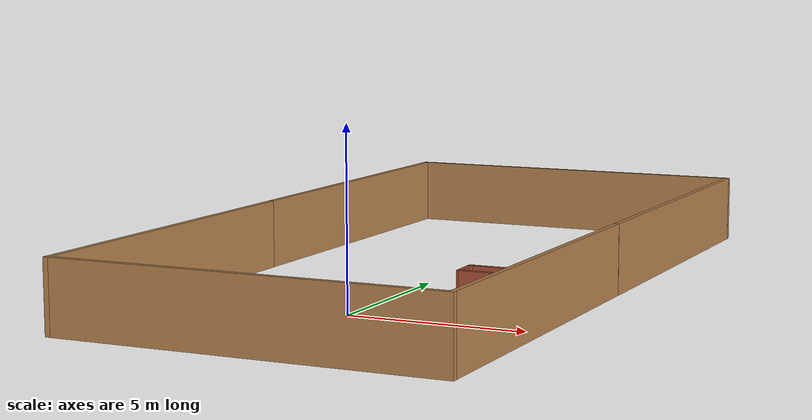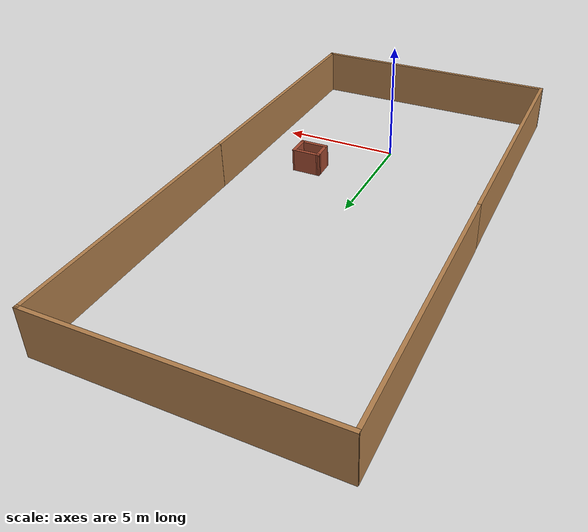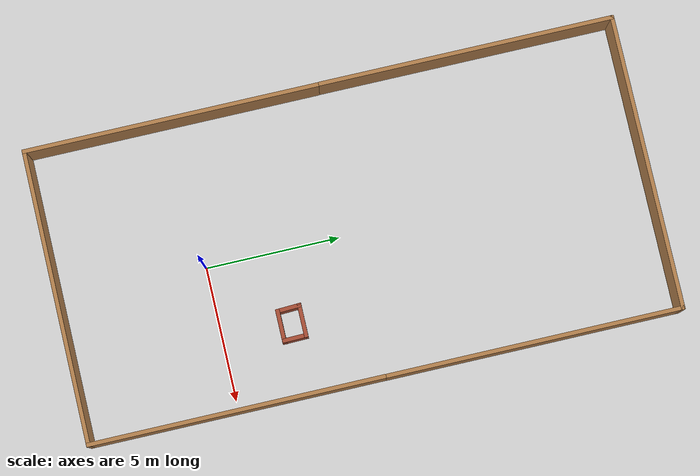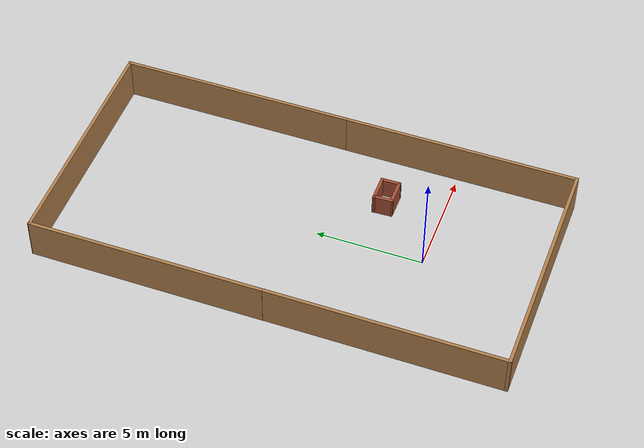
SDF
<?xml version='1.0'?>
<sdf version='1.7'>
  <model name='world_new'>
    <link name='Wall_15'>
      <pose>2.724 3.029 0 0 -0 0</pose>
      <self_collide>0</self_collide>
      <kinematic>0</kinematic>
      <gravity>1</gravity>
      <enable_wind>0</enable_wind>
      <visual name='Wall_15_Visual'>
        <pose>0 0 0.5 0 -0 0</pose>
        <geometry>
          <box>
            <size>1.2678 0.15 1</size>
          </box>
        </geometry>
        <material>
          <script>
            <uri>file://media/materials/scripts/gazebo.material</uri>
            <name>Gazebo/Bricks</name>
          </script>
          <ambient>1 1 1 1</ambient>
          <diffuse>1 1 1 1</diffuse>
          <specular>0.2 0.2 0.2 1</specular>
          <emissive>0 0 0 1</emissive>
          <shader type='pixel'/>
        </material>
        <meta>
          <layer>0</layer>
        </meta>
        <cast_shadows>1</cast_shadows>
        <transparency>0</transparency>
      </visual>
      <collision name='Wall_15_Collision'>
        <laser_retro>0</laser_retro>
        <max_contacts>10</max_contacts>
        <pose>0 0 0.5 0 -0 0</pose>
        <geometry>
          <box>
            <size>1.2678 0.15 1</size>
          </box>
        </geometry>
        <surface>
          <friction>
            <ode>
              <mu>1</mu>
              <mu2>1</mu2>
              <fdir1>0 0 0</fdir1>
              <slip1>0</slip1>
              <slip2>0</slip2>
            </ode>
            <torsional>
              <coefficient>1</coefficient>
              <patch_radius>0</patch_radius>
              <surface_radius>0</surface_radius>
              <use_patch_radius>1</use_patch_radius>
              <ode>
                <slip>0</slip>
              </ode>
            </torsional>
          </friction>
          <bounce>
            <restitution_coefficient>0</restitution_coefficient>
            <threshold>1e+06</threshold>
          </bounce>
          <contact>
            <collide_without_contact>0</collide_without_contact>
            <collide_without_contact_bitmask>1</collide_without_contact_bitmask>
            <collide_bitmask>1</collide_bitmask>
            <ode>
              <soft_cfm>0</soft_cfm>
              <soft_erp>0.2</soft_erp>
              <kp>1e+13</kp>
              <kd>1</kd>
              <max_vel>0.01</max_vel>
              <min_depth>0</min_depth>
            </ode>
            <bullet>
              <split_impulse>1</split_impulse>
              <split_impulse_penetration_threshold>-0.01</split_impulse_penetration_threshold>
              <soft_cfm>0</soft_cfm>
              <soft_erp>0.2</soft_erp>
              <kp>1e+13</kp>
              <kd>1</kd>
            </bullet>
          </contact>
        </surface>
      </collision>
    </link>
    <link name='Wall_16'>
      <pose>3.2915 2.6215 0 0 0 -1.54994</pose>
      <self_collide>0</self_collide>
      <kinematic>0</kinematic>
      <gravity>1</gravity>
      <enable_wind>0</enable_wind>
      <visual name='Wall_16_Visual'>
        <pose>0 0 0.5 0 -0 0</pose>
        <geometry>
          <box>
            <size>0.965005 0.15 1</size>
          </box>
        </geometry>
        <material>
          <script>
            <uri>file://media/materials/scripts/gazebo.material</uri>
            <name>Gazebo/Bricks</name>
          </script>
          <ambient>1 1 1 1</ambient>
          <diffuse>1 1 1 1</diffuse>
          <specular>0.2 0.2 0.2 1</specular>
          <emissive>0 0 0 1</emissive>
          <shader type='pixel'/>
        </material>
        <meta>
          <layer>0</layer>
        </meta>
        <cast_shadows>1</cast_shadows>
        <transparency>0</transparency>
      </visual>
      <collision name='Wall_16_Collision'>
        <laser_retro>0</laser_retro>
        <max_contacts>10</max_contacts>
        <pose>0 0 0.5 0 -0 0</pose>
        <geometry>
          <box>
            <size>0.965005 0.15 1</size>
          </box>
        </geometry>
        <surface>
          <friction>
            <ode>
              <mu>1</mu>
              <mu2>1</mu2>
              <fdir1>0 0 0</fdir1>
              <slip1>0</slip1>
              <slip2>0</slip2>
            </ode>
            <torsional>
              <coefficient>1</coefficient>
              <patch_radius>0</patch_radius>
              <surface_radius>0</surface_radius>
              <use_patch_radius>1</use_patch_radius>
              <ode>
                <slip>0</slip>
              </ode>
            </torsional>
          </friction>
          <bounce>
            <restitution_coefficient>0</restitution_coefficient>
            <threshold>1e+06</threshold>
          </bounce>
          <contact>
            <collide_without_contact>0</collide_without_contact>
            <collide_without_contact_bitmask>1</collide_without_contact_bitmask>
            <collide_bitmask>1</collide_bitmask>
            <ode>
              <soft_cfm>0</soft_cfm>
              <soft_erp>0.2</soft_erp>
              <kp>1e+13</kp>
              <kd>1</kd>
              <max_vel>0.01</max_vel>
              <min_depth>0</min_depth>
            </ode>
            <bullet>
              <split_impulse>1</split_impulse>
              <split_impulse_penetration_threshold>-0.01</split_impulse_penetration_threshold>
              <soft_cfm>0</soft_cfm>
              <soft_erp>0.2</soft_erp>
              <kp>1e+13</kp>
              <kd>1</kd>
            </bullet>
          </contact>
        </surface>
      </collision>
    </link>
    <link name='Wall_17'>
      <pose>2.75 2.214 0 0 -0 3.14159</pose>
      <self_collide>0</self_collide>
      <kinematic>0</kinematic>
      <gravity>1</gravity>
      <enable_wind>0</enable_wind>
      <visual name='Wall_17_Visual'>
        <pose>0 0 0.5 0 -0 0</pose>
        <geometry>
          <box>
            <size>1.25 0.15 1</size>
          </box>
        </geometry>
        <material>
          <script>
            <uri>file://media/materials/scripts/gazebo.material</uri>
            <name>Gazebo/Bricks</name>
          </script>
          <ambient>1 1 1 1</ambient>
          <diffuse>1 1 1 1</diffuse>
          <specular>0.2 0.2 0.2 1</specular>
          <emissive>0 0 0 1</emissive>
          <shader type='pixel'/>
        </material>
        <meta>
          <layer>0</layer>
        </meta>
        <cast_shadows>1</cast_shadows>
        <transparency>0</transparency>
      </visual>
      <collision name='Wall_17_Collision'>
        <laser_retro>0</laser_retro>
        <max_contacts>10</max_contacts>
        <pose>0 0 0.5 0 -0 0</pose>
        <geometry>
          <box>
            <size>1.25 0.15 1</size>
          </box>
        </geometry>
        <surface>
          <friction>
            <ode>
              <mu>1</mu>
              <mu2>1</mu2>
              <fdir1>0 0 0</fdir1>
              <slip1>0</slip1>
              <slip2>0</slip2>
            </ode>
            <torsional>
              <coefficient>1</coefficient>
              <patch_radius>0</patch_radius>
              <surface_radius>0</surface_radius>
              <use_patch_radius>1</use_patch_radius>
              <ode>
                <slip>0</slip>
              </ode>
            </torsional>
          </friction>
          <bounce>
            <restitution_coefficient>0</restitution_coefficient>
            <threshold>1e+06</threshold>
          </bounce>
          <contact>
            <collide_without_contact>0</collide_without_contact>
            <collide_without_contact_bitmask>1</collide_without_contact_bitmask>
            <collide_bitmask>1</collide_bitmask>
            <ode>
              <soft_cfm>0</soft_cfm>
              <soft_erp>0.2</soft_erp>
              <kp>1e+13</kp>
              <kd>1</kd>
              <max_vel>0.01</max_vel>
              <min_depth>0</min_depth>
            </ode>
            <bullet>
              <split_impulse>1</split_impulse>
              <split_impulse_penetration_threshold>-0.01</split_impulse_penetration_threshold>
              <soft_cfm>0</soft_cfm>
              <soft_erp>0.2</soft_erp>
              <kp>1e+13</kp>
              <kd>1</kd>
            </bullet>
          </contact>
        </surface>
      </collision>
    </link>
    <link name='Wall_18'>
      <pose>2.1825 2.6215 0 0 -0 1.61372</pose>
      <self_collide>0</self_collide>
      <kinematic>0</kinematic>
      <gravity>1</gravity>
      <enable_wind>0</enable_wind>
      <visual name='Wall_18_Visual'>
        <pose>0 0 0.5 0 -0 0</pose>
        <geometry>
          <box>
            <size>0.965005 0.15 1</size>
          </box>
        </geometry>
        <material>
          <script>
            <uri>file://media/materials/scripts/gazebo.material</uri>
            <name>Gazebo/Bricks</name>
          </script>
          <ambient>1 1 1 1</ambient>
          <diffuse>1 1 1 1</diffuse>
          <specular>0.2 0.2 0.2 1</specular>
          <emissive>0 0 0 1</emissive>
          <shader type='pixel'/>
        </material>
        <meta>
          <layer>0</layer>
        </meta>
        <cast_shadows>1</cast_shadows>
        <transparency>0</transparency>
      </visual>
      <collision name='Wall_18_Collision'>
        <laser_retro>0</laser_retro>
        <max_contacts>10</max_contacts>
        <pose>0 0 0.5 0 -0 0</pose>
        <geometry>
          <box>
            <size>0.965005 0.15 1</size>
          </box>
        </geometry>
        <surface>
          <friction>
            <ode>
              <mu>1</mu>
              <mu2>1</mu2>
              <fdir1>0 0 0</fdir1>
              <slip1>0</slip1>
              <slip2>0</slip2>
            </ode>
            <torsional>
              <coefficient>1</coefficient>
              <patch_radius>0</patch_radius>
              <surface_radius>0</surface_radius>
              <use_patch_radius>1</use_patch_radius>
              <ode>
                <slip>0</slip>
              </ode>
            </torsional>
          </friction>
          <bounce>
            <restitution_coefficient>0</restitution_coefficient>
            <threshold>1e+06</threshold>
          </bounce>
          <contact>
            <collide_without_contact>0</collide_without_contact>
            <collide_without_contact_bitmask>1</collide_without_contact_bitmask>
            <collide_bitmask>1</collide_bitmask>
            <ode>
              <soft_cfm>0</soft_cfm>
              <soft_erp>0.2</soft_erp>
              <kp>1e+13</kp>
              <kd>1</kd>
              <max_vel>0.01</max_vel>
              <min_depth>0</min_depth>
            </ode>
            <bullet>
              <split_impulse>1</split_impulse>
              <split_impulse_penetration_threshold>-0.01</split_impulse_penetration_threshold>
              <soft_cfm>0</soft_cfm>
              <soft_erp>0.2</soft_erp>
              <kp>1e+13</kp>
              <kd>1</kd>
            </bullet>
          </contact>
        </surface>
      </collision>
    </link>
    <link name='Wall_7'>
      <pose>5.425 0 0 0 0 -1.5708</pose>
      <self_collide>0</self_collide>
      <kinematic>0</kinematic>
      <gravity>1</gravity>
      <enable_wind>0</enable_wind>
      <visual name='Wall_7_Visual'>
        <pose>0 0 1 0 -0 0</pose>
        <geometry>
          <box>
            <size>11 0.15 2</size>
          </box>
        </geometry>
        <material>
          <script>
            <uri>file://media/materials/scripts/gazebo.material</uri>
            <name>Gazebo/Wood</name>
          </script>
          <ambient>1 1 1 1</ambient>
          <diffuse>1 1 1 1</diffuse>
          <specular>0.2 0.2 0.2 1</specular>
          <emissive>0 0 0 1</emissive>
          <shader type='pixel'/>
        </material>
        <meta>
          <layer>0</layer>
        </meta>
        <cast_shadows>1</cast_shadows>
        <transparency>0</transparency>
      </visual>
      <collision name='Wall_7_Collision'>
        <laser_retro>0</laser_retro>
        <max_contacts>10</max_contacts>
        <pose>0 0 1 0 -0 0</pose>
        <geometry>
          <box>
            <size>11 0.15 2</size>
          </box>
        </geometry>
        <surface>
          <friction>
            <ode>
              <mu>1</mu>
              <mu2>1</mu2>
              <fdir1>0 0 0</fdir1>
              <slip1>0</slip1>
              <slip2>0</slip2>
            </ode>
            <torsional>
              <coefficient>1</coefficient>
              <patch_radius>0</patch_radius>
              <surface_radius>0</surface_radius>
              <use_patch_radius>1</use_patch_radius>
              <ode>
                <slip>0</slip>
              </ode>
            </torsional>
          </friction>
          <bounce>
            <restitution_coefficient>0</restitution_coefficient>
            <threshold>1e+06</threshold>
          </bounce>
          <contact>
            <collide_without_contact>0</collide_without_contact>
            <collide_without_contact_bitmask>1</collide_without_contact_bitmask>
            <collide_bitmask>1</collide_bitmask>
            <ode>
              <soft_cfm>0</soft_cfm>
              <soft_erp>0.2</soft_erp>
              <kp>1e+13</kp>
              <kd>1</kd>
              <max_vel>0.01</max_vel>
              <min_depth>0</min_depth>
            </ode>
            <bullet>
              <split_impulse>1</split_impulse>
              <split_impulse_penetration_threshold>-0.01</split_impulse_penetration_threshold>
              <soft_cfm>0</soft_cfm>
              <soft_erp>0.2</soft_erp>
              <kp>1e+13</kp>
              <kd>1</kd>
            </bullet>
          </contact>
        </surface>
      </collision>
    </link>
    <link name='Wall_8'>
      <pose>0 -5.425 0 0 -0 3.14159</pose>
      <self_collide>0</self_collide>
      <kinematic>0</kinematic>
      <gravity>1</gravity>
      <enable_wind>0</enable_wind>
      <visual name='Wall_8_Visual'>
        <pose>0 0 1 0 -0 0</pose>
        <geometry>
          <box>
            <size>11 0.15 2</size>
          </box>
        </geometry>
        <material>
          <script>
            <uri>file://media/materials/scripts/gazebo.material</uri>
            <name>Gazebo/Wood</name>
          </script>
          <ambient>1 1 1 1</ambient>
          <diffuse>1 1 1 1</diffuse>
          <specular>0.2 0.2 0.2 1</specular>
          <emissive>0 0 0 1</emissive>
          <shader type='pixel'/>
        </material>
        <meta>
          <layer>0</layer>
        </meta>
        <cast_shadows>1</cast_shadows>
        <transparency>0</transparency>
      </visual>
      <collision name='Wall_8_Collision'>
        <laser_retro>0</laser_retro>
        <max_contacts>10</max_contacts>
        <pose>0 0 1 0 -0 0</pose>
        <geometry>
          <box>
            <size>11 0.15 2</size>
          </box>
        </geometry>
        <surface>
          <friction>
            <ode>
              <mu>1</mu>
              <mu2>1</mu2>
              <fdir1>0 0 0</fdir1>
              <slip1>0</slip1>
              <slip2>0</slip2>
            </ode>
            <torsional>
              <coefficient>1</coefficient>
              <patch_radius>0</patch_radius>
              <surface_radius>0</surface_radius>
              <use_patch_radius>1</use_patch_radius>
              <ode>
                <slip>0</slip>
              </ode>
            </torsional>
          </friction>
          <bounce>
            <restitution_coefficient>0</restitution_coefficient>
            <threshold>1e+06</threshold>
          </bounce>
          <contact>
            <collide_without_contact>0</collide_without_contact>
            <collide_without_contact_bitmask>1</collide_without_contact_bitmask>
            <collide_bitmask>1</collide_bitmask>
            <ode>
              <soft_cfm>0</soft_cfm>
              <soft_erp>0.2</soft_erp>
              <kp>1e+13</kp>
              <kd>1</kd>
              <max_vel>0.01</max_vel>
              <min_depth>0</min_depth>
            </ode>
            <bullet>
              <split_impulse>1</split_impulse>
              <split_impulse_penetration_threshold>-0.01</split_impulse_penetration_threshold>
              <soft_cfm>0</soft_cfm>
              <soft_erp>0.2</soft_erp>
              <kp>1e+13</kp>
              <kd>1</kd>
            </bullet>
          </contact>
        </surface>
      </collision>
    </link>
    <link name='Wall_8_clone'>
      <pose>0.005212 16.4497 0 0 -0 3.14159</pose>
      <self_collide>0</self_collide>
      <kinematic>0</kinematic>
      <gravity>1</gravity>
      <enable_wind>0</enable_wind>
      <visual name='Wall_8_Visual'>
        <pose>0 0 1 0 -0 0</pose>
        <geometry>
          <box>
            <size>11 0.15 2</size>
          </box>
        </geometry>
        <material>
          <script>
            <uri>file://media/materials/scripts/gazebo.material</uri>
            <name>Gazebo/Wood</name>
          </script>
          <ambient>1 1 1 1</ambient>
          <diffuse>1 1 1 1</diffuse>
          <specular>0.2 0.2 0.2 1</specular>
          <emissive>0 0 0 1</emissive>
          <shader type='pixel'/>
        </material>
        <meta>
          <layer>0</layer>
        </meta>
        <cast_shadows>1</cast_shadows>
        <transparency>0</transparency>
      </visual>
      <collision name='Wall_8_Collision'>
        <laser_retro>0</laser_retro>
        <max_contacts>10</max_contacts>
        <pose>0 0 1 0 -0 0</pose>
        <geometry>
          <box>
            <size>11 0.15 2</size>
          </box>
        </geometry>
        <surface>
          <friction>
            <ode>
              <mu>1</mu>
              <mu2>1</mu2>
              <fdir1>0 0 0</fdir1>
              <slip1>0</slip1>
              <slip2>0</slip2>
            </ode>
            <torsional>
              <coefficient>1</coefficient>
              <patch_radius>0</patch_radius>
              <surface_radius>0</surface_radius>
              <use_patch_radius>1</use_patch_radius>
              <ode>
                <slip>0</slip>
              </ode>
            </torsional>
          </friction>
          <bounce>
            <restitution_coefficient>0</restitution_coefficient>
            <threshold>1e+06</threshold>
          </bounce>
          <contact>
            <collide_without_contact>0</collide_without_contact>
            <collide_without_contact_bitmask>1</collide_without_contact_bitmask>
            <collide_bitmask>1</collide_bitmask>
            <ode>
              <soft_cfm>0</soft_cfm>
              <soft_erp>0.2</soft_erp>
              <kp>1e+13</kp>
              <kd>1</kd>
              <max_vel>0.01</max_vel>
              <min_depth>0</min_depth>
            </ode>
            <bullet>
              <split_impulse>1</split_impulse>
              <split_impulse_penetration_threshold>-0.01</split_impulse_penetration_threshold>
              <soft_cfm>0</soft_cfm>
              <soft_erp>0.2</soft_erp>
              <kp>1e+13</kp>
              <kd>1</kd>
            </bullet>
          </contact>
        </surface>
      </collision>
    </link>
    <link name='Wall_9'>
      <pose>-5.425 0 0 0 -0 1.5708</pose>
      <self_collide>0</self_collide>
      <kinematic>0</kinematic>
      <gravity>1</gravity>
      <enable_wind>0</enable_wind>
      <visual name='Wall_9_Visual'>
        <pose>0 0 1 0 -0 0</pose>
        <geometry>
          <box>
            <size>11 0.15 2</size>
          </box>
        </geometry>
        <material>
          <script>
            <uri>file://media/materials/scripts/gazebo.material</uri>
            <name>Gazebo/Wood</name>
          </script>
          <ambient>1 1 1 1</ambient>
          <diffuse>1 1 1 1</diffuse>
          <specular>0.2 0.2 0.2 1</specular>
          <emissive>0 0 0 1</emissive>
          <shader type='pixel'/>
        </material>
        <meta>
          <layer>0</layer>
        </meta>
        <cast_shadows>1</cast_shadows>
        <transparency>0</transparency>
      </visual>
      <collision name='Wall_9_Collision'>
        <laser_retro>0</laser_retro>
        <max_contacts>10</max_contacts>
        <pose>0 0 1 0 -0 0</pose>
        <geometry>
          <box>
            <size>11 0.15 2</size>
          </box>
        </geometry>
        <surface>
          <friction>
            <ode>
              <mu>1</mu>
              <mu2>1</mu2>
              <fdir1>0 0 0</fdir1>
              <slip1>0</slip1>
              <slip2>0</slip2>
            </ode>
            <torsional>
              <coefficient>1</coefficient>
              <patch_radius>0</patch_radius>
              <surface_radius>0</surface_radius>
              <use_patch_radius>1</use_patch_radius>
              <ode>
                <slip>0</slip>
              </ode>
            </torsional>
          </friction>
          <bounce>
            <restitution_coefficient>0</restitution_coefficient>
            <threshold>1e+06</threshold>
          </bounce>
          <contact>
            <collide_without_contact>0</collide_without_contact>
            <collide_without_contact_bitmask>1</collide_without_contact_bitmask>
            <collide_bitmask>1</collide_bitmask>
            <ode>
              <soft_cfm>0</soft_cfm>
              <soft_erp>0.2</soft_erp>
              <kp>1e+13</kp>
              <kd>1</kd>
              <max_vel>0.01</max_vel>
              <min_depth>0</min_depth>
            </ode>
            <bullet>
              <split_impulse>1</split_impulse>
              <split_impulse_penetration_threshold>-0.01</split_impulse_penetration_threshold>
              <soft_cfm>0</soft_cfm>
              <soft_erp>0.2</soft_erp>
              <kp>1e+13</kp>
              <kd>1</kd>
            </bullet>
          </contact>
        </surface>
      </collision>
    </link>
    <link name='Wall_9_clone'>
      <pose>-5.43187 10.9934 0 0 -0 1.5708</pose>
      <self_collide>0</self_collide>
      <kinematic>0</kinematic>
      <gravity>1</gravity>
      <enable_wind>0</enable_wind>
      <inertial>
        <mass>1</mass>
        <pose>0 0 0 0 -0 0</pose>
        <inertia>
          <ixx>1</ixx>
          <ixy>0</ixy>
          <ixz>0</ixz>
          <iyy>1</iyy>
          <iyz>0</iyz>
          <izz>1</izz>
        </inertia>
      </inertial>
      <visual name='Wall_9_Visual'>
        <pose>0 0 1 0 -0 0</pose>
        <geometry>
          <box>
            <size>11 0.15 2</size>
          </box>
        </geometry>
        <material>
          <script>
            <uri>file://media/materials/scripts/gazebo.material</uri>
            <name>Gazebo/Wood</name>
          </script>
          <ambient>1 1 1 1</ambient>
          <diffuse>1 1 1 1</diffuse>
          <specular>0.2 0.2 0.2 1</specular>
          <emissive>0 0 0 1</emissive>
          <shader type='pixel'>
            <normal_map>__default__</normal_map>
          </shader>
        </material>
        <meta>
          <layer>0</layer>
        </meta>
        <cast_shadows>1</cast_shadows>
        <transparency>0</transparency>
      </visual>
      <collision name='Wall_9_Collision'>
        <laser_retro>0</laser_retro>
        <max_contacts>10</max_contacts>
        <pose>0 0 1 0 -0 0</pose>
        <geometry>
          <box>
            <size>11 0.15 2</size>
          </box>
        </geometry>
        <surface>
          <friction>
            <ode>
              <mu>1</mu>
              <mu2>1</mu2>
              <fdir1>0 0 0</fdir1>
              <slip1>0</slip1>
              <slip2>0</slip2>
            </ode>
            <torsional>
              <coefficient>1</coefficient>
              <patch_radius>0</patch_radius>
              <surface_radius>0</surface_radius>
              <use_patch_radius>1</use_patch_radius>
              <ode>
                <slip>0</slip>
              </ode>
            </torsional>
          </friction>
          <bounce>
            <restitution_coefficient>0</restitution_coefficient>
            <threshold>1e+06</threshold>
          </bounce>
          <contact>
            <collide_without_contact>0</collide_without_contact>
            <collide_without_contact_bitmask>1</collide_without_contact_bitmask>
            <collide_bitmask>1</collide_bitmask>
            <ode>
              <soft_cfm>0</soft_cfm>
              <soft_erp>0.2</soft_erp>
              <kp>1e+13</kp>
              <kd>1</kd>
              <max_vel>0.01</max_vel>
              <min_depth>0</min_depth>
            </ode>
            <bullet>
              <split_impulse>1</split_impulse>
              <split_impulse_penetration_threshold>-0.01</split_impulse_penetration_threshold>
              <soft_cfm>0</soft_cfm>
              <soft_erp>0.2</soft_erp>
              <kp>1e+13</kp>
              <kd>1</kd>
            </bullet>
          </contact>
        </surface>
      </collision>
    </link>
    <link name='Wall_9_clone_0'>
      <pose>5.42819 10.9922 0 0 -0 1.5708</pose>
      <self_collide>0</self_collide>
      <kinematic>0</kinematic>
      <gravity>1</gravity>
      <enable_wind>0</enable_wind>
      <visual name='Wall_9_Visual'>
        <pose>0 0 1 0 -0 0</pose>
        <geometry>
          <box>
            <size>11 0.15 2</size>
          </box>
        </geometry>
        <material>
          <script>
            <uri>file://media/materials/scripts/gazebo.material</uri>
            <name>Gazebo/Wood</name>
          </script>
          <ambient>1 1 1 1</ambient>
          <diffuse>1 1 1 1</diffuse>
          <specular>0.2 0.2 0.2 1</specular>
          <emissive>0 0 0 1</emissive>
          <shader type='pixel'/>
        </material>
        <meta>
          <layer>0</layer>
        </meta>
        <cast_shadows>1</cast_shadows>
        <transparency>0</transparency>
      </visual>
      <collision name='Wall_9_Collision'>
        <laser_retro>0</laser_retro>
        <max_contacts>10</max_contacts>
        <pose>0 0 1 0 -0 0</pose>
        <geometry>
          <box>
            <size>11 0.15 2</size>
          </box>
        </geometry>
        <surface>
          <friction>
            <ode>
              <mu>1</mu>
              <mu2>1</mu2>
              <fdir1>0 0 0</fdir1>
              <slip1>0</slip1>
              <slip2>0</slip2>
            </ode>
            <torsional>
              <coefficient>1</coefficient>
              <patch_radius>0</patch_radius>
              <surface_radius>0</surface_radius>
              <use_patch_radius>1</use_patch_radius>
              <ode>
                <slip>0</slip>
              </ode>
            </torsional>
          </friction>
          <bounce>
            <restitution_coefficient>0</restitution_coefficient>
            <threshold>1e+06</threshold>
          </bounce>
          <contact>
            <collide_without_contact>0</collide_without_contact>
            <collide_without_contact_bitmask>1</collide_without_contact_bitmask>
            <collide_bitmask>1</collide_bitmask>
            <ode>
              <soft_cfm>0</soft_cfm>
              <soft_erp>0.2</soft_erp>
              <kp>1e+13</kp>
              <kd>1</kd>
              <max_vel>0.01</max_vel>
              <min_depth>0</min_depth>
            </ode>
            <bullet>
              <split_impulse>1</split_impulse>
              <split_impulse_penetration_threshold>-0.01</split_impulse_penetration_threshold>
              <soft_cfm>0</soft_cfm>
              <soft_erp>0.2</soft_erp>
              <kp>1e+13</kp>
              <kd>1</kd>
            </bullet>
          </contact>
        </surface>
      </collision>
    </link>
    <static>1</static>
    <allow_auto_disable>1</allow_auto_disable>
  </model>
</sdf>
